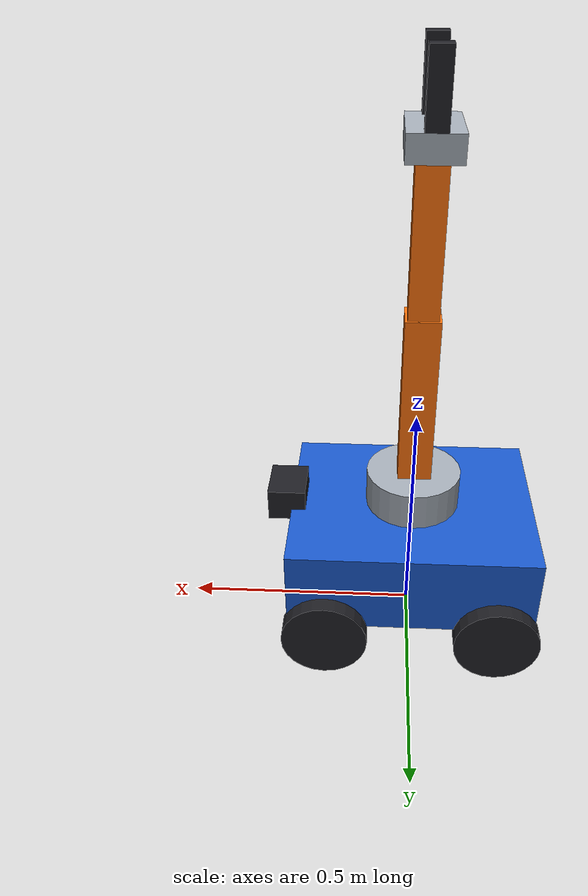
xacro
<?xml version="1.0"?>
<robot xmlns:xacro="http://www.ros.org/wiki/xacro" name="embodied_robot">
  <xacro:property name="pi" value="3.141592653589793"/>
  <xacro:property name="wheel_radius" value="0.09"/>
  <xacro:property name="wheel_width" value="0.045"/>
  <xacro:property name="wheel_y" value="0.22"/>
  <xacro:property name="wheel_x" value="0.18"/>

  <xacro:macro name="box_inertial" params="mass x y z">
    <inertial>
      <mass value="${mass}"/>
      <inertia ixx="${mass * (y*y + z*z) / 12.0}" ixy="0" ixz="0"
               iyy="${mass * (x*x + z*z) / 12.0}" iyz="0"
               izz="${mass * (x*x + y*y) / 12.0}"/>
    </inertial>
  </xacro:macro>

  <xacro:macro name="cylinder_inertial" params="mass radius length">
    <inertial>
      <mass value="${mass}"/>
      <inertia ixx="${mass * (3*radius*radius + length*length) / 12.0}" ixy="0" ixz="0"
               iyy="${mass * (3*radius*radius + length*length) / 12.0}" iyz="0"
               izz="${mass * radius*radius / 2.0}"/>
    </inertial>
  </xacro:macro>

  <xacro:macro name="wheel_inertial" params="mass radius length">
    <inertial>
      <origin rpy="${pi/2} 0 0"/>
      <mass value="${mass}"/>
      <inertia ixx="${mass * (3*radius*radius + length*length) / 12.0}" ixy="0" ixz="0"
               iyy="${mass * (3*radius*radius + length*length) / 12.0}" iyz="0"
               izz="${mass * radius*radius / 2.0}"/>
    </inertial>
  </xacro:macro>

  <material name="blue"><color rgba="0.1 0.35 0.8 1"/></material>
  <material name="dark"><color rgba="0.12 0.12 0.14 1"/></material>
  <material name="orange"><color rgba="1.0 0.45 0.05 1"/></material>
  <material name="silver"><color rgba="0.65 0.68 0.72 1"/></material>

  <link name="base_footprint"/>

  <joint name="base_footprint_joint" type="fixed">
    <parent link="base_footprint"/>
    <child link="base_link"/>
    <origin xyz="0 0 0.20"/>
  </joint>

  <link name="base_link">
    <visual>
      <geometry><box size="0.52 0.42 0.18"/></geometry>
      <material name="blue"/>
    </visual>
    <collision><geometry><box size="0.52 0.42 0.18"/></geometry></collision>
    <xacro:box_inertial mass="12.0" x="0.52" y="0.42" z="0.18"/>
  </link>

  <xacro:macro name="wheel" params="prefix x y">
    <link name="${prefix}_wheel_link">
      <visual>
        <origin rpy="${pi/2} 0 0"/>
        <geometry><cylinder radius="${wheel_radius}" length="${wheel_width}"/></geometry>
        <material name="dark"/>
      </visual>
      <collision>
        <origin rpy="${pi/2} 0 0"/>
        <geometry><cylinder radius="${wheel_radius}" length="${wheel_width}"/></geometry>
      </collision>
      <xacro:wheel_inertial mass="0.8" radius="${wheel_radius}" length="${wheel_width}"/>
    </link>
    <joint name="${prefix}_wheel_joint" type="continuous">
      <parent link="base_link"/>
      <child link="${prefix}_wheel_link"/>
      <origin xyz="${x} ${y} -0.105"/>
      <axis xyz="0 1 0"/>
      <dynamics damping="0.05" friction="0.0"/>
    </joint>
    <gazebo reference="${prefix}_wheel_link">
      <mu1>1.2</mu1><mu2>1.2</mu2><kp>1000000</kp><kd>10</kd>
    </gazebo>
  </xacro:macro>

  <!-- Keep the original joint names for the front wheels so existing checks remain valid. -->
  <xacro:wheel prefix="left" x="${wheel_x}" y="${wheel_y}"/>
  <xacro:wheel prefix="right" x="${wheel_x}" y="${-wheel_y}"/>
  <xacro:wheel prefix="left_rear" x="${-wheel_x}" y="${wheel_y}"/>
  <xacro:wheel prefix="right_rear" x="${-wheel_x}" y="${-wheel_y}"/>

  <link name="arm_base_link">
    <visual><geometry><cylinder radius="0.10" length="0.08"/></geometry><material name="silver"/></visual>
    <collision><geometry><cylinder radius="0.10" length="0.08"/></geometry></collision>
    <xacro:cylinder_inertial mass="1.0" radius="0.10" length="0.08"/>
  </link>
  <joint name="arm_base_joint" type="fixed">
    <parent link="base_link"/><child link="arm_base_link"/>
    <origin xyz="0 0 0.13"/>
  </joint>

  <link name="arm_link_1">
    <visual><origin xyz="0 0 0.18"/><geometry><box size="0.07 0.07 0.36"/></geometry><material name="orange"/></visual>
    <collision><origin xyz="0 0 0.18"/><geometry><box size="0.07 0.07 0.36"/></geometry></collision>
    <inertial>
      <origin xyz="0 0 0.18"/>
      <mass value="1.2"/>
      <inertia ixx="0.01345" ixy="0" ixz="0" iyy="0.01345" iyz="0" izz="0.00098"/>
    </inertial>
  </link>
  <joint name="arm_joint_1" type="revolute">
    <parent link="arm_base_link"/><child link="arm_link_1"/>
    <origin xyz="0 0 0.04"/><axis xyz="0 1 0"/>
    <limit lower="-1.20" upper="1.20" effort="35" velocity="1.5"/>
    <dynamics damping="0.8" friction="0.1"/>
  </joint>

  <link name="arm_link_2">
    <visual><origin xyz="0 0 0.15"/><geometry><box size="0.06 0.06 0.30"/></geometry><material name="orange"/></visual>
    <collision><origin xyz="0 0 0.15"/><geometry><box size="0.06 0.06 0.30"/></geometry></collision>
    <inertial>
      <origin xyz="0 0 0.15"/>
      <mass value="0.8"/>
      <inertia ixx="0.00624" ixy="0" ixz="0" iyy="0.00624" iyz="0" izz="0.00048"/>
    </inertial>
  </link>
  <joint name="arm_joint_2" type="revolute">
    <parent link="arm_link_1"/><child link="arm_link_2"/>
    <origin xyz="0 0 0.36"/><axis xyz="0 1 0"/>
    <limit lower="-1.50" upper="1.50" effort="25" velocity="1.8"/>
    <dynamics damping="0.6" friction="0.08"/>
  </joint>

  <link name="tool_link">
    <visual name="gripper_palm_visual">
      <origin xyz="0 0 0.025"/>
      <geometry><box size="0.10 0.16 0.05"/></geometry>
      <material name="silver"/>
    </visual>
    <visual name="left_finger_visual">
      <origin xyz="0 0.065 0.11"/>
      <geometry><box size="0.04 0.03 0.14"/></geometry>
      <material name="dark"/>
    </visual>
    <visual name="right_finger_visual">
      <origin xyz="0 -0.065 0.11"/>
      <geometry><box size="0.04 0.03 0.14"/></geometry>
      <material name="dark"/>
    </visual>
    <collision name="gripper_palm_collision">
      <origin xyz="0 0 0.025"/>
      <geometry><box size="0.10 0.16 0.05"/></geometry>
    </collision>
    <collision name="left_finger_collision">
      <origin xyz="0 0.065 0.11"/>
      <geometry><box size="0.04 0.03 0.14"/></geometry>
    </collision>
    <collision name="right_finger_collision">
      <origin xyz="0 -0.065 0.11"/>
      <geometry><box size="0.04 0.03 0.14"/></geometry>
    </collision>
    <inertial>
      <origin xyz="0 0 0.07"/>
      <mass value="0.35"/>
      <inertia ixx="0.00120" ixy="0" ixz="0" iyy="0.00065" iyz="0" izz="0.00125"/>
    </inertial>
  </link>
  <joint name="tool_joint" type="fixed">
    <parent link="arm_link_2"/><child link="tool_link"/><origin xyz="0 0 0.30"/>
  </joint>

  <link name="camera_link">
    <visual><geometry><box size="0.08 0.10 0.07"/></geometry><material name="dark"/></visual>
    <collision><geometry><box size="0.08 0.10 0.07"/></geometry></collision>
    <xacro:box_inertial mass="0.2" x="0.08" y="0.10" z="0.07"/>
  </link>
  <joint name="camera_joint" type="fixed">
    <parent link="base_link"/><child link="camera_link"/>
    <origin xyz="0.27 0 0.10"/>
  </joint>

  <link name="camera_optical_link"/>
  <joint name="camera_optical_joint" type="fixed">
    <parent link="camera_link"/><child link="camera_optical_link"/>
    <origin xyz="0.045 0 0" rpy="${-pi/2} 0 ${-pi/2}"/>
  </joint>

  <transmission name="arm_joint_1_transmission">
    <type>transmission_interface/SimpleTransmission</type>
    <joint name="arm_joint_1"><hardwareInterface>hardware_interface/EffortJointInterface</hardwareInterface></joint>
    <actuator name="arm_joint_1_motor"><hardwareInterface>hardware_interface/EffortJointInterface</hardwareInterface><mechanicalReduction>1</mechanicalReduction></actuator>
  </transmission>
  <transmission name="arm_joint_2_transmission">
    <type>transmission_interface/SimpleTransmission</type>
    <joint name="arm_joint_2"><hardwareInterface>hardware_interface/EffortJointInterface</hardwareInterface></joint>
    <actuator name="arm_joint_2_motor"><hardwareInterface>hardware_interface/EffortJointInterface</hardwareInterface><mechanicalReduction>1</mechanicalReduction></actuator>
  </transmission>

  <gazebo>
    <plugin name="gazebo_ros_control" filename="libgazebo_ros_control.so">
      <robotNamespace>/</robotNamespace>
    </plugin>
  </gazebo>

  <gazebo>
    <plugin name="skid_steer_drive_controller" filename="libgazebo_ros_skid_steer_drive.so">
      <robotNamespace>/</robotNamespace>
      <leftFrontJoint>left_wheel_joint</leftFrontJoint>
      <rightFrontJoint>right_wheel_joint</rightFrontJoint>
      <leftRearJoint>left_rear_wheel_joint</leftRearJoint>
      <rightRearJoint>right_rear_wheel_joint</rightRearJoint>
      <wheelSeparation>${2 * wheel_y}</wheelSeparation>
      <wheelDiameter>${2 * wheel_radius}</wheelDiameter>
      <torque>15</torque>
      <commandTopic>cmd_vel</commandTopic>
      <odometryTopic>odom</odometryTopic>
      <odometryFrame>odom</odometryFrame>
      <robotBaseFrame>base_footprint</robotBaseFrame>
      <broadcastTF>true</broadcastTF>
      <updateRate>50</updateRate>
    </plugin>
  </gazebo>

  <gazebo reference="camera_link">
    <sensor type="camera" name="front_camera">
      <update_rate>20</update_rate>
      <camera name="front">
        <horizontal_fov>1.047</horizontal_fov>
        <image><width>640</width><height>480</height><format>R8G8B8</format></image>
        <clip><near>0.05</near><far>20</far></clip>
      </camera>
      <plugin name="camera_controller" filename="libgazebo_ros_camera.so">
        <robotNamespace>/</robotNamespace>
        <cameraName>camera</cameraName>
        <imageTopicName>image_raw</imageTopicName>
        <cameraInfoTopicName>camera_info</cameraInfoTopicName>
        <frameName>camera_optical_link</frameName>
      </plugin>
    </sensor>
  </gazebo>
</robot>
